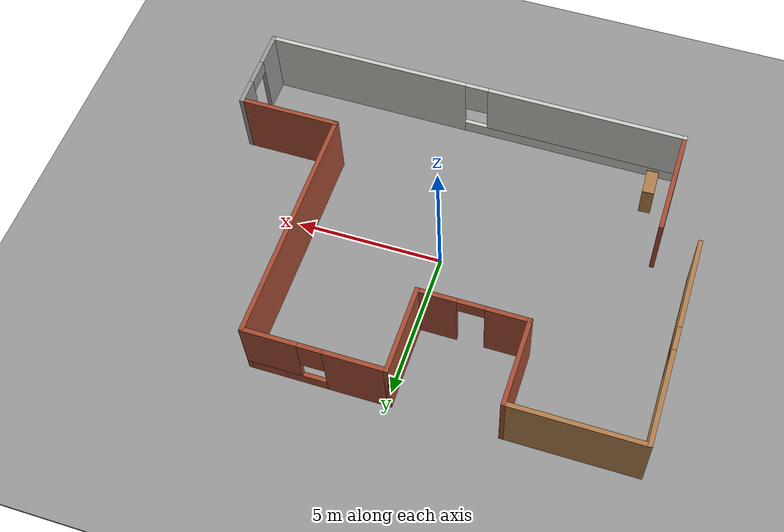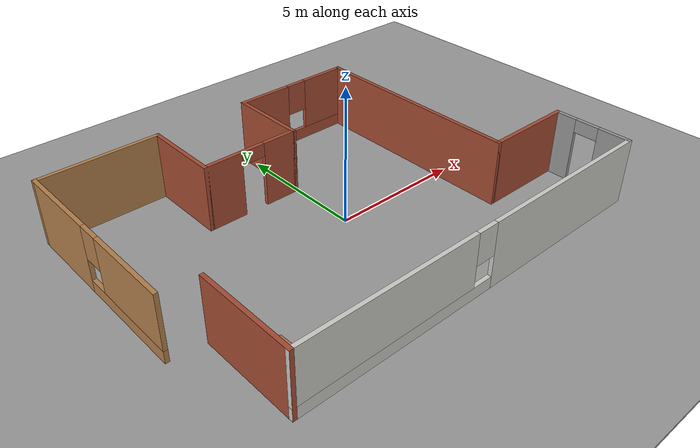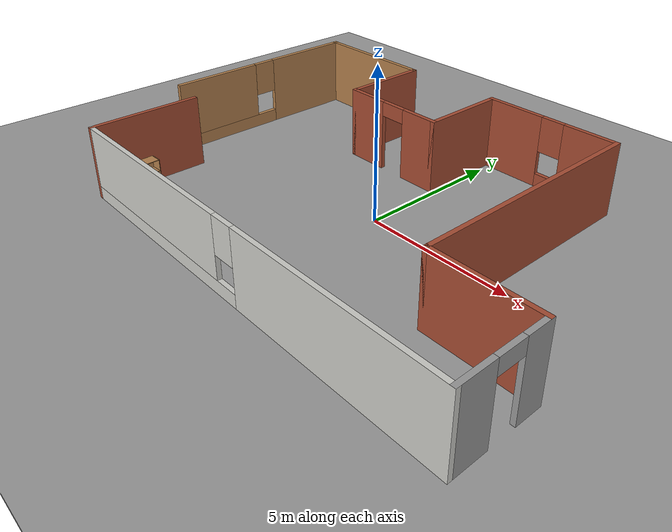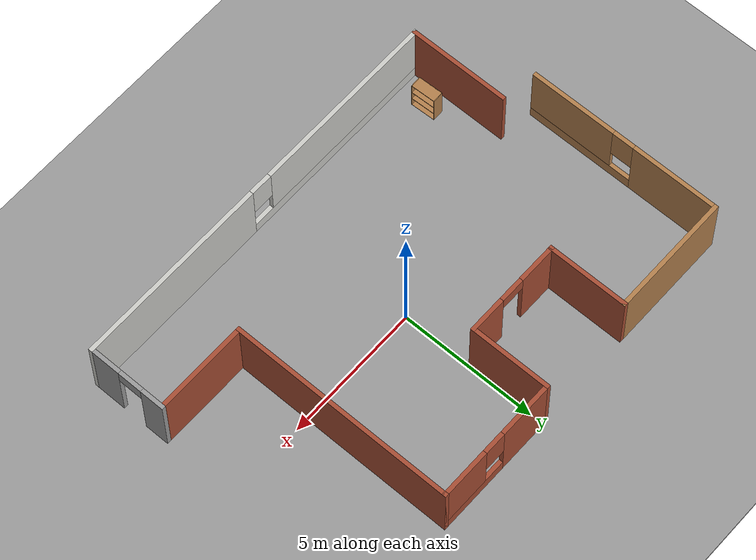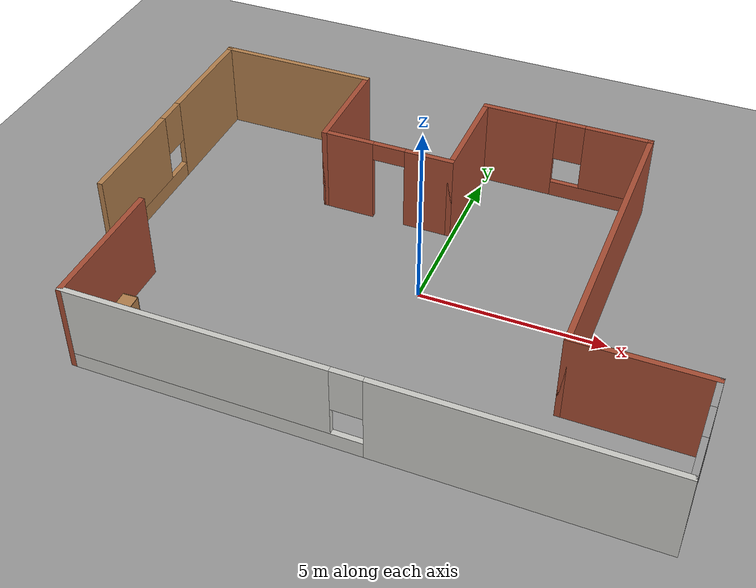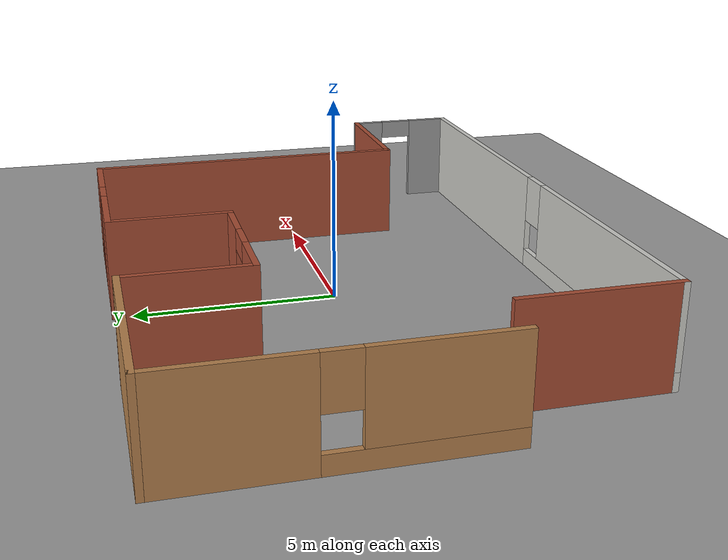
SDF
<sdf version="1.6">
 <world name="default">
  <model name="ground_plane">
   <static>1</static>
   <link name="link">
    <collision name="collision">
     <geometry><plane><normal>0 0 1</normal><size>100 100</size></plane></geometry>
     <surface>
      <contact><collide_bitmask>65535</collide_bitmask></contact>
      <friction><ode><mu>100</mu><mu2>50</mu2></ode></friction>
     </surface>
    </collision>
    <visual name="visual">
     <cast_shadows>0</cast_shadows>
     <geometry><plane><normal>0 0 1</normal><size>100 100</size></plane></geometry>
     <material>
      <script><uri>file://media/materials/scripts/gazebo.material</uri><name>Gazebo/Grey</name></script>
     </material>
    </visual>
   </link>
  </model>
  <model name="ground_plane_0">
   <static>1</static>
   <link name="link">
    <collision name="collision">
     <geometry><plane><normal>0 0 1</normal><size>100 100</size></plane></geometry>
     <surface><friction><ode><mu>100</mu><mu2>50</mu2></ode></friction></surface>
    </collision>
    <visual name="visual">
     <cast_shadows>0</cast_shadows>
     <geometry><plane><normal>0 0 1</normal><size>100 100</size></plane></geometry>
     <material>
      <script><uri>file://media/materials/scripts/gazebo.material</uri><name>Gazebo/Grey</name></script>
     </material>
    </visual>
   </link>
   <pose>-2.53954 16.2011 0 0 -0 0</pose>
  </model>
  <model name="bookshelf">
   <static>1</static>
   <link name="link">
    <inertial><mass>1</mass></inertial>
    <collision name="back">
     <pose>0 0.005 0.6 0 -0 0</pose>
     <geometry><box><size>0.9 0.01 1.2</size></box></geometry>
    </collision>
    <visual name="visual1">
     <pose>0 0.005 0.6 0 -0 0</pose>
     <geometry><box><size>0.9 0.01 1.2</size></box></geometry>
     <material>
      <script><uri>file://media/materials/scripts/gazebo.material</uri><name>Gazebo/Wood</name></script>
     </material>
    </visual>
    <collision name="left_side">
     <pose>0.45 -0.195 0.6 0 -0 0</pose>
     <geometry><box><size>0.02 0.4 1.2</size></box></geometry>
    </collision>
    <visual name="visual2">
     <pose>0.45 -0.195 0.6 0 -0 0</pose>
     <geometry><box><size>0.02 0.4 1.2</size></box></geometry>
     <material>
      <script><uri>file://media/materials/scripts/gazebo.material</uri><name>Gazebo/Wood</name></script>
     </material>
    </visual>
    <collision name="right_side">
     <pose>-0.45 -0.195 0.6 0 -0 0</pose>
     <geometry><box><size>0.02 0.4 1.2</size></box></geometry>
    </collision>
    <visual name="visual3">
     <pose>-0.45 -0.195 0.6 0 -0 0</pose>
     <geometry><box><size>0.02 0.4 1.2</size></box></geometry>
     <material>
      <script><uri>file://media/materials/scripts/gazebo.material</uri><name>Gazebo/Wood</name></script>
     </material>
    </visual>
    <collision name="bottom">
     <pose>0 -0.195 0.03 0 -0 0</pose>
     <geometry><box><size>0.88 0.4 0.06</size></box></geometry>
    </collision>
    <visual name="visual4">
     <pose>0 -0.195 0.03 0 -0 0</pose>
     <geometry><box><size>0.88 0.4 0.06</size></box></geometry>
     <material>
      <script><uri>file://media/materials/scripts/gazebo.material</uri><name>Gazebo/Wood</name></script>
     </material>
    </visual>
    <collision name="top">
     <pose>0 -0.195 1.19 0 -0 0</pose>
     <geometry><box><size>0.88 0.4 0.02</size></box></geometry>
    </collision>
    <visual name="visual5">
     <pose>0 -0.195 1.19 0 -0 0</pose>
     <geometry><box><size>0.88 0.4 0.02</size></box></geometry>
     <material>
      <script><uri>file://media/materials/scripts/gazebo.material</uri><name>Gazebo/Wood</name></script>
     </material>
    </visual>
    <collision name="low_shelf">
     <pose>0 -0.195 0.43 0 -0 0</pose>
     <geometry><box><size>0.88 0.4 0.02</size></box></geometry>
    </collision>
    <visual name="visual6">
     <pose>0 -0.195 0.43 0 -0 0</pose>
     <geometry><box><size>0.88 0.4 0.02</size></box></geometry>
     <material>
      <script><uri>file://media/materials/scripts/gazebo.material</uri><name>Gazebo/Wood</name></script>
     </material>
    </visual>
    <collision name="high_shelf">
     <pose>0 -0.195 0.8 0 -0 0</pose>
     <geometry><box><size>0.88 0.4 0.02</size></box></geometry>
    </collision>
    <visual name="visual7">
     <pose>0 -0.195 0.8 0 -0 0</pose>
     <geometry><box><size>0.88 0.4 0.02</size></box></geometry>
     <material>
      <script><uri>file://media/materials/scripts/gazebo.material</uri><name>Gazebo/Wood</name></script>
     </material>
    </visual>
   </link>
   <pose>-6.21488 -4.39063 0 0 -0 1.60589</pose>
  </model>
  <model name="building">
   <pose>-0.116017 -0.054315 0 0 -0 0</pose>
   <link name="Wall_10">
    <pose>-1.8 2.625 0 0 -0 0</pose>
    <visual name="Wall_10_Visual_0">
     <pose>-1.13232 0 1.25 0 -0 0</pose>
     <geometry><box><size>1.48536 0.15 2.5</size></box></geometry>
     <material>
      <script><uri>file://media/materials/scripts/gazebo.material</uri><name>Gazebo/Bricks</name></script>
      <ambient>0.996078 0.47451 0.0196078 1</ambient>
     </material>
     <meta><layer>0</layer></meta>
    </visual>
    <collision name="Wall_10_Collision_0">
     <geometry><box><size>1.48536 0.15 2.5</size></box></geometry>
     <pose>-1.13232 0 1.25 0 -0 0</pose>
    </collision>
    <visual name="Wall_10_Visual_1">
     <pose>1.19268 0 1.25 0 -0 0</pose>
     <geometry><box><size>1.36464 0.15 2.5</size></box></geometry>
     <material>
      <script><uri>file://media/materials/scripts/gazebo.material</uri><name>Gazebo/Bricks</name></script>
      <ambient>0.996078 0.47451 0.0196078 1</ambient>
     </material>
     <meta><layer>0</layer></meta>
    </visual>
    <collision name="Wall_10_Collision_1">
     <geometry><box><size>1.36464 0.15 2.5</size></box></geometry>
     <pose>1.19268 0 1.25 0 -0 0</pose>
    </collision>
    <visual name="Wall_10_Visual_2">
     <pose>0.06036 0 2.25 0 -0 0</pose>
     <geometry><box><size>0.9 0.15 0.5</size></box></geometry>
     <material>
      <script><uri>file://media/materials/scripts/gazebo.material</uri><name>Gazebo/Bricks</name></script>
      <ambient>0.996078 0.47451 0.0196078 1</ambient>
     </material>
     <meta><layer>0</layer></meta>
    </visual>
    <collision name="Wall_10_Collision_2">
     <geometry><box><size>0.9 0.15 0.5</size></box></geometry>
     <pose>0.06036 0 2.25 0 -0 0</pose>
    </collision>
   </link>
   <link name="Wall_11">
    <collision name="Wall_11_Collision">
     <geometry><box><size>3 0.15 2.5</size></box></geometry>
     <pose>0 0 1.25 0 -0 0</pose>
    </collision>
    <visual name="Wall_11_Visual">
     <pose>0 0 1.25 0 -0 0</pose>
     <geometry><box><size>3 0.15 2.5</size></box></geometry>
     <material>
      <script><uri>file://media/materials/scripts/gazebo.material</uri><name>Gazebo/Bricks</name></script>
      <ambient>0.996078 0.47451 0.0196078 1</ambient>
     </material>
     <meta><layer>0</layer></meta>
    </visual>
    <pose>1e-06 4.05 0 0 -0 1.5708</pose>
   </link>
   <link name="Wall_12">
    <pose>2.3 5.475 0 0 -0 0</pose>
    <visual name="Wall_12_Visual_0">
     <pose>-1.32442 0 1.25 0 -0 0</pose>
     <geometry><box><size>2.10115 0.15 2.5</size></box></geometry>
     <material>
      <script><uri>file://media/materials/scripts/gazebo.material</uri><name>Gazebo/Bricks</name></script>
      <ambient>0.996078 0.47451 0.0196078 1</ambient>
     </material>
     <meta><layer>0</layer></meta>
    </visual>
    <collision name="Wall_12_Collision_0">
     <geometry><box><size>2.10115 0.15 2.5</size></box></geometry>
     <pose>-1.32442 0 1.25 0 -0 0</pose>
    </collision>
    <visual name="Wall_12_Visual_1">
     <pose>1.05058 0 0.25 0 -0 0</pose>
     <geometry><box><size>2.64885 0.15 0.5</size></box></geometry>
     <material>
      <script><uri>file://media/materials/scripts/gazebo.material</uri><name>Gazebo/Bricks</name></script>
      <ambient>0.996078 0.47451 0.0196078 1</ambient>
     </material>
     <meta><layer>0</layer></meta>
    </visual>
    <collision name="Wall_12_Collision_1">
     <geometry><box><size>2.64885 0.15 0.5</size></box></geometry>
     <pose>1.05058 0 0.25 0 -0 0</pose>
    </collision>
    <visual name="Wall_12_Visual_2">
     <pose>1.45057 0 1.5 0 -0 0</pose>
     <geometry><box><size>1.84885 0.15 2</size></box></geometry>
     <material>
      <script><uri>file://media/materials/scripts/gazebo.material</uri><name>Gazebo/Bricks</name></script>
      <ambient>0.996078 0.47451 0.0196078 1</ambient>
     </material>
     <meta><layer>0</layer></meta>
    </visual>
    <collision name="Wall_12_Collision_2">
     <geometry><box><size>1.84885 0.15 2</size></box></geometry>
     <pose>1.45057 0 1.5 0 -0 0</pose>
    </collision>
    <visual name="Wall_12_Visual_3">
     <pose>0.12615 0 1.9 0 -0 0</pose>
     <geometry><box><size>0.8 0.15 1.2</size></box></geometry>
     <material>
      <script><uri>file://media/materials/scripts/gazebo.material</uri><name>Gazebo/Bricks</name></script>
      <ambient>0.996078 0.47451 0.0196078 1</ambient>
     </material>
     <meta><layer>0</layer></meta>
    </visual>
    <collision name="Wall_12_Collision_3">
     <geometry><box><size>0.8 0.15 1.2</size></box></geometry>
     <pose>0.12615 0 1.9 0 -0 0</pose>
    </collision>
   </link>
   <link name="Wall_13">
    <collision name="Wall_13_Collision">
     <geometry><box><size>8.25 0.15 2.5</size></box></geometry>
     <pose>0 0 1.25 0 -0 0</pose>
    </collision>
    <visual name="Wall_13_Visual">
     <pose>0 0 1.25 0 -0 0</pose>
     <geometry><box><size>8.25 0.15 2.5</size></box></geometry>
     <material>
      <script><uri>file://media/materials/scripts/gazebo.material</uri><name>Gazebo/Bricks</name></script>
      <ambient>0.435294 0.796078 0.67451 1</ambient>
     </material>
     <meta><layer>0</layer></meta>
    </visual>
    <pose>4.6 1.425 0 0 0 -1.5708</pose>
   </link>
   <link name="Wall_14">
    <collision name="Wall_14_Collision">
     <geometry><box><size>3.5 0.15 2.5</size></box></geometry>
     <pose>0 0 1.25 0 -0 0</pose>
    </collision>
    <visual name="Wall_14_Visual">
     <pose>0 0 1.25 0 -0 0</pose>
     <geometry><box><size>3.5 0.15 2.5</size></box></geometry>
     <material>
      <script><uri>file://media/materials/scripts/gazebo.material</uri><name>Gazebo/Bricks</name></script>
      <ambient>1 1 1 1</ambient>
     </material>
     <meta><layer>0</layer></meta>
    </visual>
    <pose>6.275 -2.625 0 0 -0 0</pose>
   </link>
   <link name="Wall_15">
    <pose>7.95 -4.05 0 0 0 -1.5708</pose>
    <visual name="Wall_15_Visual_0">
     <pose>-1.05683 0 1.25 0 -0 0</pose>
     <geometry><box><size>0.886347 0.15 2.5</size></box></geometry>
     <material>
      <script><uri>file://media/materials/scripts/gazebo.material</uri><name>Gazebo/Grey</name></script>
      <ambient>1 1 1 1</ambient>
     </material>
     <meta><layer>0</layer></meta>
    </visual>
    <collision name="Wall_15_Collision_0">
     <geometry><box><size>0.886347 0.15 2.5</size></box></geometry>
     <pose>-1.05683 0 1.25 0 -0 0</pose>
    </collision>
    <visual name="Wall_15_Visual_1">
     <pose>0.893174 0 1.25 0 -0 0</pose>
     <geometry><box><size>1.21365 0.15 2.5</size></box></geometry>
     <material>
      <script><uri>file://media/materials/scripts/gazebo.material</uri><name>Gazebo/Grey</name></script>
      <ambient>1 1 1 1</ambient>
     </material>
     <meta><layer>0</layer></meta>
    </visual>
    <collision name="Wall_15_Collision_1">
     <geometry><box><size>1.21365 0.15 2.5</size></box></geometry>
     <pose>0.893174 0 1.25 0 -0 0</pose>
    </collision>
    <visual name="Wall_15_Visual_2">
     <pose>-0.163653 0 2.25 0 -0 0</pose>
     <geometry><box><size>0.9 0.15 0.5</size></box></geometry>
     <material>
      <script><uri>file://media/materials/scripts/gazebo.material</uri><name>Gazebo/Grey</name></script>
      <ambient>1 1 1 1</ambient>
     </material>
     <meta><layer>0</layer></meta>
    </visual>
    <collision name="Wall_15_Collision_2">
     <geometry><box><size>0.9 0.15 0.5</size></box></geometry>
     <pose>-0.163653 0 2.25 0 -0 0</pose>
    </collision>
   </link>
   <link name="Wall_16">
    <pose>0.650001 -5.475 0 0 -0 3.14159</pose>
    <visual name="Wall_16_Visual_0">
     <pose>-3.82995 0 1.25 0 -0 0</pose>
     <geometry><box><size>7.0901 0.15 2.5</size></box></geometry>
     <material>
      <script><uri>file://media/materials/scripts/gazebo.material</uri><name>Gazebo/CeilingTiled</name></script>
      <ambient>0.760784 0.662745 0.627451 1</ambient>
     </material>
     <meta><layer>0</layer></meta>
    </visual>
    <collision name="Wall_16_Collision_0">
     <geometry><box><size>7.0901 0.15 2.5</size></box></geometry>
     <pose>-3.82995 0 1.25 0 -0 0</pose>
    </collision>
    <visual name="Wall_16_Visual_1">
     <pose>3.54505 0 0.25 0 -0 0</pose>
     <geometry><box><size>7.6599 0.15 0.5</size></box></geometry>
     <material>
      <script><uri>file://media/materials/scripts/gazebo.material</uri><name>Gazebo/CeilingTiled</name></script>
      <ambient>0.760784 0.662745 0.627451 1</ambient>
     </material>
     <meta><layer>0</layer></meta>
    </visual>
    <collision name="Wall_16_Collision_1">
     <geometry><box><size>7.6599 0.15 0.5</size></box></geometry>
     <pose>3.54505 0 0.25 0 -0 0</pose>
    </collision>
    <visual name="Wall_16_Visual_2">
     <pose>3.94505 0 1.5 0 -0 0</pose>
     <geometry><box><size>6.8599 0.15 2</size></box></geometry>
     <material>
      <script><uri>file://media/materials/scripts/gazebo.material</uri><name>Gazebo/CeilingTiled</name></script>
      <ambient>0.760784 0.662745 0.627451 1</ambient>
     </material>
     <meta><layer>0</layer></meta>
    </visual>
    <collision name="Wall_16_Collision_2">
     <geometry><box><size>6.8599 0.15 2</size></box></geometry>
     <pose>3.94505 0 1.5 0 -0 0</pose>
    </collision>
    <visual name="Wall_16_Visual_3">
     <pose>0.115103 0 1.9 0 -0 0</pose>
     <geometry><box><size>0.8 0.15 1.2</size></box></geometry>
     <material>
      <script><uri>file://media/materials/scripts/gazebo.material</uri><name>Gazebo/CeilingTiled</name></script>
      <ambient>0.760784 0.662745 0.627451 1</ambient>
     </material>
     <meta><layer>0</layer></meta>
    </visual>
    <collision name="Wall_16_Collision_3">
     <geometry><box><size>0.8 0.15 1.2</size></box></geometry>
     <pose>0.115103 0 1.9 0 -0 0</pose>
    </collision>
   </link>
   <link name="Wall_17">
    <collision name="Wall_17_Collision">
     <geometry><box><size>3.75 0.15 2.5</size></box></geometry>
     <pose>0 0 1.25 0 -0 0</pose>
    </collision>
    <visual name="Wall_17_Visual">
     <pose>0 0 1.25 0 -0 0</pose>
     <geometry><box><size>3.75 0.15 2.5</size></box></geometry>
     <material>
      <script><uri>file://media/materials/scripts/gazebo.material</uri><name>Gazebo/Bricks</name></script>
      <ambient>0.235294 1 0.027451 1</ambient>
     </material>
     <meta><layer>0</layer></meta>
    </visual>
    <pose>-6.65 -3.675 0 0 -0 1.5708</pose>
   </link>
   <link name="Wall_22">
    <collision name="Wall_22_Collision">
     <geometry><box><size>4.5 0.15 2.5</size></box></geometry>
     <pose>0 0 1.25 0 -0 0</pose>
    </collision>
    <visual name="Wall_22_Visual">
     <pose>0 0 1.25 0 -0 0</pose>
     <geometry><box><size>4.5 0.15 2.5</size></box></geometry>
     <material>
      <script><uri>file://media/materials/scripts/gazebo.material</uri><name>Gazebo/Wood</name></script>
      <ambient>1 1 1 1</ambient>
     </material>
     <meta><layer>0</layer></meta>
    </visual>
    <pose>-5.775 5.475 0 0 -0 3.14159</pose>
   </link>
   <link name="Wall_23">
    <pose>-7.95 1.925 0 0 0 -1.5708</pose>
    <visual name="Wall_23_Visual_0">
     <pose>-2.00199 0 1.25 0 -0 0</pose>
     <geometry><box><size>3.24601 0.15 2.5</size></box></geometry>
     <material>
      <script><uri>file://media/materials/scripts/gazebo.material</uri><name>Gazebo/Wood</name></script>
      <ambient>1 1 1 1</ambient>
     </material>
     <meta><layer>0</layer></meta>
    </visual>
    <collision name="Wall_23_Collision_0">
     <geometry><box><size>3.24601 0.15 2.5</size></box></geometry>
     <pose>-2.00199 0 1.25 0 -0 0</pose>
    </collision>
    <visual name="Wall_23_Visual_1">
     <pose>1.62301 0 0.25 0 -0 0</pose>
     <geometry><box><size>4.00399 0.15 0.5</size></box></geometry>
     <material>
      <script><uri>file://media/materials/scripts/gazebo.material</uri><name>Gazebo/Wood</name></script>
      <ambient>1 1 1 1</ambient>
     </material>
     <meta><layer>0</layer></meta>
    </visual>
    <collision name="Wall_23_Collision_1">
     <geometry><box><size>4.00399 0.15 0.5</size></box></geometry>
     <pose>1.62301 0 0.25 0 -0 0</pose>
    </collision>
    <visual name="Wall_23_Visual_2">
     <pose>2.02301 0 1.5 0 -0 0</pose>
     <geometry><box><size>3.20399 0.15 2</size></box></geometry>
     <material>
      <script><uri>file://media/materials/scripts/gazebo.material</uri><name>Gazebo/Wood</name></script>
      <ambient>1 1 1 1</ambient>
     </material>
     <meta><layer>0</layer></meta>
    </visual>
    <collision name="Wall_23_Collision_2">
     <geometry><box><size>3.20399 0.15 2</size></box></geometry>
     <pose>2.02301 0 1.5 0 -0 0</pose>
    </collision>
    <visual name="Wall_23_Visual_3">
     <pose>0.021012 0 1.9 0 -0 0</pose>
     <geometry><box><size>0.8 0.15 1.2</size></box></geometry>
     <material>
      <script><uri>file://media/materials/scripts/gazebo.material</uri><name>Gazebo/Wood</name></script>
      <ambient>1 1 1 1</ambient>
     </material>
     <meta><layer>0</layer></meta>
    </visual>
    <collision name="Wall_23_Collision_3">
     <geometry><box><size>0.8 0.15 1.2</size></box></geometry>
     <pose>0.021012 0 1.9 0 -0 0</pose>
    </collision>
   </link>
   <link name="Wall_9">
    <collision name="Wall_9_Collision">
     <geometry><box><size>3 0.15 2.5</size></box></geometry>
     <pose>0 0 1.25 0 -0 0</pose>
    </collision>
    <visual name="Wall_9_Visual">
     <pose>0 0 1.25 0 -0 0</pose>
     <geometry><box><size>3 0.15 2.5</size></box></geometry>
     <material>
      <script><uri>file://media/materials/scripts/gazebo.material</uri><name>Gazebo/Bricks</name></script>
      <ambient>0.996078 0.47451 0.0196078 1</ambient>
     </material>
     <meta><layer>0</layer></meta>
    </visual>
    <pose>-3.6 4.05 0 0 0 -1.5708</pose>
   </link>
   <static>1</static>
  </model>
 </world>
</sdf>
